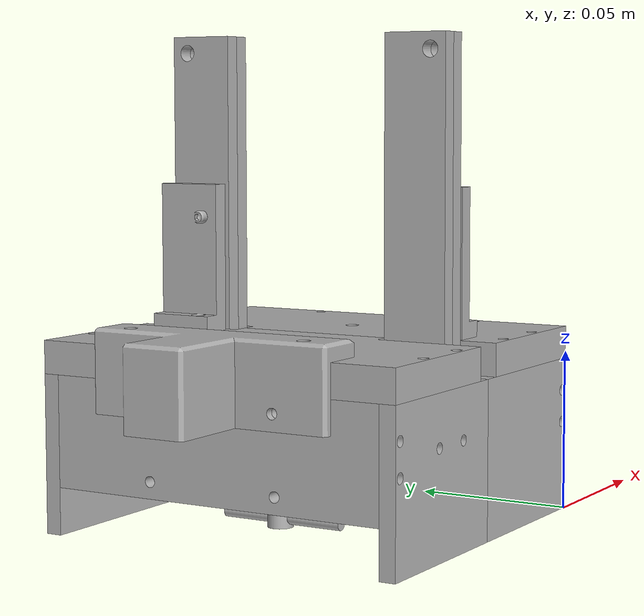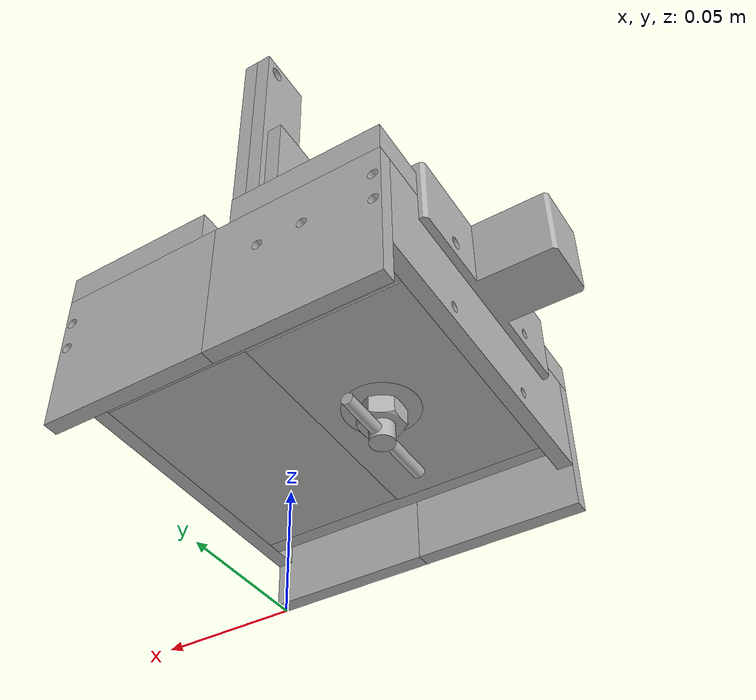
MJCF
<?xml version='1.0' encoding='utf-8'?>
<mujoco model="recovery2">
  <compiler angle="radian" meshdir="meshes" autolimits="true" balanceinertia="true" />
  <option timestep="0.002" integrator="implicitfast" />
  <default>
    <joint damping="0.1" />
    <geom rgba="0.7 0.7 0.7 1" />
  </default>
  <asset>
    <mesh name="Bearing1_1" file="Bearing1_1.stl" scale="0.001 0.001 0.001" />
    <mesh name="Bearing1_1_ss" file="Bearing1_1_ss.obj" scale="0.001 0.001 0.001" />
    <mesh name="Crank_1" file="Crank_1.stl" scale="0.001 0.001 0.001" />
    <mesh name="Crank_1_ss" file="Crank_1_ss.obj" scale="0.001 0.001 0.001" />
    <mesh name="F_Back_1" file="F_Back_1.stl" scale="0.001 0.001 0.001" />
    <mesh name="F_Back_1_ss" file="F_Back_1_ss.obj" scale="0.001 0.001 0.001" />
    <mesh name="F_LeftLink_1" file="F_LeftLink_1.stl" scale="0.001 0.001 0.001" />
    <mesh name="F_LeftLink_1_ss" file="F_LeftLink_1_ss.obj" scale="0.001 0.001 0.001" />
    <mesh name="F_Left_1" file="F_Left_1.stl" scale="0.001 0.001 0.001" />
    <mesh name="F_Left_1_ss" file="F_Left_1_ss.obj" scale="0.001 0.001 0.001" />
    <mesh name="F_RightLink2_1" file="F_RightLink2_1.stl" scale="0.001 0.001 0.001" />
    <mesh name="F_RightLink2_1_ss" file="F_RightLink2_1_ss.obj" scale="0.001 0.001 0.001" />
    <mesh name="F_RightLink_1" file="F_RightLink_1.stl" scale="0.001 0.001 0.001" />
    <mesh name="F_RightLink_1_ss" file="F_RightLink_1_ss.obj" scale="0.001 0.001 0.001" />
    <mesh name="F_Right_1" file="F_Right_1.stl" scale="0.001 0.001 0.001" />
    <mesh name="F_Right_1_ss" file="F_Right_1_ss.obj" scale="0.001 0.001 0.001" />
    <mesh name="F_Top_1" file="F_Top_1.stl" scale="0.001 0.001 0.001" />
    <mesh name="F_Top_1_ss" file="F_Top_1_ss.obj" scale="0.001 0.001 0.001" />
    <mesh name="Handle_1" file="Handle_1.stl" scale="0.001 0.001 0.001" />
    <mesh name="Handle_1_ss" file="Handle_1_ss.obj" scale="0.001 0.001 0.001" />
    <mesh name="HexNut_1" file="HexNut_1.stl" scale="0.001 0.001 0.001" />
    <mesh name="HexNut_1_ss" file="HexNut_1_ss.obj" scale="0.001 0.001 0.001" />
    <mesh name="LeftSlider1_1" file="LeftSlider1_1.stl" scale="0.001 0.001 0.001" />
    <mesh name="LeftSlider1_1_ss" file="LeftSlider1_1_ss.obj" scale="0.001 0.001 0.001" />
    <mesh name="LeftSlider2_1" file="LeftSlider2_1.stl" scale="0.001 0.001 0.001" />
    <mesh name="LeftSlider2_1_ss" file="LeftSlider2_1_ss.obj" scale="0.001 0.001 0.001" />
    <mesh name="M_Back_1" file="M_Back_1.stl" scale="0.001 0.001 0.001" />
    <mesh name="M_Back_1_ss" file="M_Back_1_ss.obj" scale="0.001 0.001 0.001" />
    <mesh name="M_Bottom_1" file="M_Bottom_1.stl" scale="0.001 0.001 0.001" />
    <mesh name="M_Bottom_1_ss" file="M_Bottom_1_ss.obj" scale="0.001 0.001 0.001" />
    <mesh name="M_Left1_1" file="M_Left1_1.stl" scale="0.001 0.001 0.001" />
    <mesh name="M_Left1_1_ss" file="M_Left1_1_ss.obj" scale="0.001 0.001 0.001" />
    <mesh name="M_Left2_1" file="M_Left2_1.stl" scale="0.001 0.001 0.001" />
    <mesh name="M_Left2_1_ss" file="M_Left2_1_ss.obj" scale="0.001 0.001 0.001" />
    <mesh name="M_LeftLink2_copy_1" file="M_LeftLink2_copy_1.stl" scale="0.001 0.001 0.001" />
    <mesh name="M_LeftLink2_copy_1_ss" file="M_LeftLink2_copy_1_ss.obj" scale="0.001 0.001 0.001" />
    <mesh name="M_LeftLink_1" file="M_LeftLink_1.stl" scale="0.001 0.001 0.001" />
    <mesh name="M_LeftLink_1_ss" file="M_LeftLink_1_ss.obj" scale="0.001 0.001 0.001" />
    <mesh name="M_Right1_1" file="M_Right1_1.stl" scale="0.001 0.001 0.001" />
    <mesh name="M_Right1_1_ss" file="M_Right1_1_ss.obj" scale="0.001 0.001 0.001" />
    <mesh name="M_Right2_1" file="M_Right2_1.stl" scale="0.001 0.001 0.001" />
    <mesh name="M_Right2_1_ss" file="M_Right2_1_ss.obj" scale="0.001 0.001 0.001" />
    <mesh name="M_RightLink_1" file="M_RightLink_1.stl" scale="0.001 0.001 0.001" />
    <mesh name="M_RightLink_1_ss" file="M_RightLink_1_ss.obj" scale="0.001 0.001 0.001" />
    <mesh name="M_Top_1" file="M_Top_1.stl" scale="0.001 0.001 0.001" />
    <mesh name="M_Top_1_ss" file="M_Top_1_ss.obj" scale="0.001 0.001 0.001" />
    <mesh name="NeedleBearing_1" file="NeedleBearing_1.stl" scale="0.001 0.001 0.001" />
    <mesh name="NeedleBearing_1_ss" file="NeedleBearing_1_ss.obj" scale="0.001 0.001 0.001" />
    <mesh name="PAWL_1" file="PAWL_1.stl" scale="0.001 0.001 0.001" />
    <mesh name="PAWL_1_ss" file="PAWL_1_ss.obj" scale="0.001 0.001 0.001" />
    <mesh name="PULLEY_1" file="PULLEY_1.stl" scale="0.001 0.001 0.001" />
    <mesh name="PULLEY_1_ss" file="PULLEY_1_ss.obj" scale="0.001 0.001 0.001" />
    <mesh name="RachetGear_1" file="RachetGear_1.stl" scale="0.001 0.001 0.001" />
    <mesh name="RachetGear_1_ss" file="RachetGear_1_ss.obj" scale="0.001 0.001 0.001" />
    <mesh name="RightSlider1_1" file="RightSlider1_1.stl" scale="0.001 0.001 0.001" />
    <mesh name="RightSlider1_1_ss" file="RightSlider1_1_ss.obj" scale="0.001 0.001 0.001" />
    <mesh name="RightSlider2_1" file="RightSlider2_1.stl" scale="0.001 0.001 0.001" />
    <mesh name="RightSlider2_1_ss" file="RightSlider2_1_ss.obj" scale="0.001 0.001 0.001" />
    <mesh name="ShaftHandle_1" file="ShaftHandle_1.stl" scale="0.001 0.001 0.001" />
    <mesh name="ShaftHandle_1_ss" file="ShaftHandle_1_ss.obj" scale="0.001 0.001 0.001" />
    <mesh name="Shaft_copy_1" file="Shaft_copy_1.stl" scale="0.001 0.001 0.001" />
    <mesh name="Shaft_copy_1_ss" file="Shaft_copy_1_ss.obj" scale="0.001 0.001 0.001" />
    <mesh name="Washer_1" file="Washer_1.stl" scale="0.001 0.001 0.001" />
    <mesh name="Washer_1_ss" file="Washer_1_ss.obj" scale="0.001 0.001 0.001" />
    <mesh name="base_link" file="base_link.stl" scale="0.001 0.001 0.001" />
    <mesh name="base_link_ss" file="base_link_ss.obj" scale="0.001 0.001 0.001" />
    </asset>
  <worldbody>
    <light pos="0 0 2" dir="0 0 -1" directional="true" />
    <body name="base_link" pos="0 0 0">
      <inertial pos="-0.0804507486 0.0592835415 0.0194423847" mass="0.297420193" fullinertia="0.000183518828 6.8000971e-05 0.000246582582 -9.206e-09 -1.19847e-07 1.181e-09" />
      <geom name="base_link_vis" type="mesh" mesh="base_link_ss" pos="0 0 0" contype="0" conaffinity="0" group="2" />
      <geom name="base_link_col" type="mesh" mesh="base_link" pos="0 0 0" group="3" />
      <body name="F_Back_1" pos="-0.105148 0.038141 0.01938">
        <inertial pos="-0.00249800208 0.021059684 0.0116702457" mass="0.137767359" fullinertia="0.000144826212 1.331664e-05 0.000132095537 0 -3.612e-09 -6.2e-10" />
        <geom name="F_Back_1_vis" type="mesh" mesh="F_Back_1_ss" pos="0.105148 -0.038141 -0.01938" contype="0" conaffinity="0" group="2" />
        <geom name="F_Back_1_col" type="mesh" mesh="F_Back_1" pos="0.105148 -0.038141 -0.01938" group="3" />
        <body name="F_Left_1" pos="-0.0025 -0.033155 0.01862">
          <inertial pos="0.0251776945 -0.00249996486 -0.014375704" mass="0.101158371" fullinertia="1.9517619e-05 4.5005057e-05 2.5912736e-05 0 -6.7493e-08 0" />
          <geom name="F_Left_1_vis" type="mesh" mesh="F_Left_1_ss" pos="0.107648 -0.004986 -0.038" contype="0" conaffinity="0" group="2" />
          <geom name="F_Left_1_col" type="mesh" mesh="F_Left_1" pos="0.107648 -0.004986 -0.038" group="3" />
          <body name="LeftSlider1_1" pos="0.022542 0 -0.005476">
            <inertial pos="0.0312865344 0.00247888681 -2.14372731e-07" mass="0.00480968577" fullinertia="2.26694e-07 4.009482e-06 3.819257e-06 -3.418e-09 1.5e-11 0" />
            <geom name="LeftSlider1_1_vis" type="mesh" mesh="LeftSlider1_1_ss" pos="0.085106 -0.004986 -0.032524" contype="0" conaffinity="0" group="2" />
            <geom name="LeftSlider1_1_col" type="mesh" mesh="LeftSlider1_1" pos="0.085106 -0.004986 -0.032524" group="3" />
          </body>
        </body>
        <body name="F_Right_1" pos="-0.0025 0.075275 0.01862">
          <inertial pos="0.0251779811 0.0025001046 -0.0143755439" mass="0.101158371" fullinertia="1.9517907e-05 4.5005614e-05 2.5913005e-05 0 -6.7826e-08 0" />
          <geom name="F_Right_1_vis" type="mesh" mesh="F_Right_1_ss" pos="0.107648 -0.113416 -0.038" contype="0" conaffinity="0" group="2" />
          <geom name="F_Right_1_col" type="mesh" mesh="F_Right_1" pos="0.107648 -0.113416 -0.038" group="3" />
          <body name="RightSlider1_1" pos="0.0225 0 -0.0055">
            <inertial pos="0.031507417 -0.002510745 -7.70780898e-05" mass="0.00492918836" fullinertia="2.30839e-07 4.059066e-06 3.865484e-06 5.065e-09 3.24e-09 -1.76e-10" />
            <geom name="RightSlider1_1_vis" type="mesh" mesh="RightSlider1_1_ss" pos="0.085148 -0.113416 -0.0325" contype="0" conaffinity="0" group="2" />
            <geom name="RightSlider1_1_col" type="mesh" mesh="RightSlider1_1" pos="0.085148 -0.113416 -0.0325" group="3" />
          </body>
        </body>
        <body name="F_Top_1" pos="-0.0025 0.050275 0.02862">
          <inertial pos="0.0236003991 -0.0292381857 0.00499821111" mass="0.47829478" fullinertia="0.000537081705 0.000113767795 0.000642836178 1.61796e-07 1.2446e-08 2.7827e-08" />
          <geom name="F_Top_1_vis" type="mesh" mesh="F_Top_1_ss" pos="0.107648 -0.088416 -0.048" contype="0" conaffinity="0" group="2" />
          <geom name="F_Top_1_col" type="mesh" mesh="F_Top_1" pos="0.107648 -0.088416 -0.048" group="3" />
          <body name="F_LeftLink_1" pos="0.047646 -0.071715 0.005">
            <inertial pos="0.00250048472 0.00505978907 0.0458444031" mass="0.0756098278" fullinertia="6.1706429e-05 5.9367238e-05 2.653048e-06 0 0 -1.48998e-07" />
            <geom name="F_LeftLink_1_vis" type="mesh" mesh="F_LeftLink_1_ss" pos="0.060002 -0.016701 -0.053" contype="0" conaffinity="0" group="2" />
            <geom name="F_LeftLink_1_col" type="mesh" mesh="F_LeftLink_1" pos="0.060002 -0.016701 -0.053" group="3" />
          </body>
          <body name="Handle_1" pos="0 0 0.01">
            <inertial pos="-0.00989469782 -0.0292245648 -0.00537091296" mass="0.172379064" fullinertia="5.0854474e-05 2.9520263e-05 6.0410717e-05 1.0205e-08 -5.102506e-06 -1.5992e-08" />
            <geom name="Handle_1_vis" type="mesh" mesh="Handle_1_ss" pos="0.107648 -0.088416 -0.058" contype="0" conaffinity="0" group="2" />
            <geom name="Handle_1_col" type="mesh" mesh="Handle_1" pos="0.107648 -0.088416 -0.058" group="3" />
          </body>
          <body name="F_RightLink_1" pos="0.047646 0.013285 0.005">
            <inertial pos="0.00250048472 -0.00505964911 0.045844402" mass="0.0756098278" fullinertia="6.1706429e-05 5.9367238e-05 2.653048e-06 0 0 1.48998e-07" />
            <geom name="F_RightLink_1_vis" type="mesh" mesh="F_RightLink_1_ss" pos="0.060002 -0.101701 -0.053" contype="0" conaffinity="0" group="2" />
            <geom name="F_RightLink_1_col" type="mesh" mesh="F_RightLink_1" pos="0.060002 -0.101701 -0.053" group="3" />
          </body>
          <body name="F_RightLink2_1" pos="0.038146 0.003285 0.01">
            <inertial pos="0.00455469522 0.00501192716 0.0214802814" mass="0.037859067" fullinertia="8.165114e-06 7.05674e-06 1.43608e-06 1.3539e-08 -3.27374e-07 7.6195e-08" />
            <geom name="F_RightLink2_1_vis" type="mesh" mesh="F_RightLink2_1_ss" pos="0.069502 -0.091701 -0.058" contype="0" conaffinity="0" group="2" />
            <geom name="F_RightLink2_1_col" type="mesh" mesh="F_RightLink2_1" pos="0.069502 -0.091701 -0.058" group="3" />
          </body>
        </body>
      </body>
      <body name="PAWL_1" pos="-0.081083 0.026968 0.02838">
        <inertial pos="0.00759739586 0.0041450729 0.0029997773" mass="0.00219643482" fullinertia="8.7452e-08 1.86954e-07 2.61227e-07 -9.0071e-08 0 0" />
        <geom name="PAWL_1_vis" type="mesh" mesh="PAWL_1_ss" pos="0.081083 -0.026968 -0.02838" contype="0" conaffinity="0" group="2" />
        <geom name="PAWL_1_col" type="mesh" mesh="PAWL_1" pos="0.081083 -0.026968 -0.02838" group="3" />
      </body>
      <body name="M_Bottom_1" pos="-0.160469 0.028926 0.092694">
        <joint name="슬라이더_35" type="slide" pos="0 0 0" axis="1 0 0" />
        <inertial pos="0.165598918 0.0300912211 -0.0726897017" mass="0.315563134" fullinertia="0.000178859145 6.73492e-05 0.000240878302 9.108e-09 6.708e-09 -4.9016e-08" />
        <geom name="M_Bottom_1_vis" type="mesh" mesh="M_Bottom_1_ss" pos="0.160469 -0.028926 -0.092694" contype="0" conaffinity="0" group="2" />
        <geom name="M_Bottom_1_col" type="mesh" mesh="M_Bottom_1" pos="0.160469 -0.028926 -0.092694" group="3" />
        <body name="M_Left2_1" pos="0.170469 -0.011046 -0.072694">
          <inertial pos="-0.0309005488 -0.00249746007 0.0115634885" mass="0.125753991" fullinertia="1.1823586e-05 0.000114734557 0.000103440903 -7.073e-09 -1.05838e-07 3.913e-09" />
          <geom name="M_Left2_1_vis" type="mesh" mesh="M_Left2_1_ss" pos="-0.01 -0.01788 -0.02" contype="0" conaffinity="0" group="2" />
          <geom name="M_Left2_1_col" type="mesh" mesh="M_Left2_1" pos="-0.01 -0.01788 -0.02" group="3" />
          <body name="LeftSlider2_1" pos="9.3e-05 -0.005 0.0125">
            <inertial pos="-0.0298131649 -0.00162593452 -9.23693684e-10" mass="0.00229091972" fullinertia="4.5823e-08 1.932377e-06 1.895545e-06 -1.692e-09 0 0" />
            <geom name="LeftSlider2_1_vis" type="mesh" mesh="LeftSlider2_1_ss" pos="-0.010093 -0.01288 -0.0325" contype="0" conaffinity="0" group="2" />
            <geom name="LeftSlider2_1_col" type="mesh" mesh="LeftSlider2_1" pos="-0.010093 -0.01288 -0.0325" group="3" />
          </body>
        </body>
        <body name="M_Right2_1" pos="0.170653 0.071229 -0.073685">
          <inertial pos="-0.0310865324 0.00249690229 0.0125625477" mass="0.125753991" fullinertia="1.1799136e-05 0.000114701155 0.000103431952 7.136e-09 -1.29329e-07 -4.251e-09" />
          <geom name="M_Right2_1_vis" type="mesh" mesh="M_Right2_1_ss" pos="-0.010184 -0.100155 -0.019009" contype="0" conaffinity="0" group="2" />
          <geom name="M_Right2_1_col" type="mesh" mesh="M_Right2_1" pos="-0.010184 -0.100155 -0.019009" group="3" />
          <body name="RightSlider2_1" pos="-0.001434 0.005 0.013491">
            <inertial pos="-0.0290582882 0.00162540358 9.23657317e-10" mass="0.00228883041" fullinertia="4.5781e-08 1.927194e-06 1.890395e-06 1.689e-09 0 0" />
            <geom name="RightSlider2_1_vis" type="mesh" mesh="RightSlider2_1_ss" pos="-0.00875 -0.105155 -0.0325" contype="0" conaffinity="0" group="2" />
            <geom name="RightSlider2_1_col" type="mesh" mesh="RightSlider2_1" pos="-0.00875 -0.105155 -0.0325" group="3" />
          </body>
        </body>
        <body name="M_Back_1" pos="0.190469 0.008954 -0.072694">
          <inertial pos="0.00250000691 0.0213311524 0.0114116392" mass="0.13564114" fullinertia="0.000142257506 1.2670596e-05 0.000130159704 -3.1e-11 -1e-12 7.852e-09" />
          <geom name="M_Back_1_vis" type="mesh" mesh="M_Back_1_ss" pos="-0.03 -0.03788 -0.02" contype="0" conaffinity="0" group="2" />
          <geom name="M_Back_1_col" type="mesh" mesh="M_Back_1" pos="-0.03 -0.03788 -0.02" group="3" />
          <body name="M_Left1_1" pos="0.0025 -0.03288 0.018">
            <inertial pos="-0.0251347873 -0.0025 -0.0143167501" mass="0.101566519" fullinertia="1.9519705e-05 4.4850547e-05 2.575784e-05 0 9.332e-08 0" />
            <geom name="M_Left1_1_vis" type="mesh" mesh="M_Left1_1_ss" pos="-0.0325 -0.005 -0.038" contype="0" conaffinity="0" group="2" />
            <geom name="M_Left1_1_col" type="mesh" mesh="M_Left1_1" pos="-0.0325 -0.005 -0.038" group="3" />
          </body>
          <body name="M_Right1_1" pos="0.0025 0.07555 0.018">
            <inertial pos="-0.0251347873 0.00250006947 -0.0143167501" mass="0.101566519" fullinertia="1.9519705e-05 4.4850547e-05 2.575784e-05 0 9.332e-08 0" />
            <geom name="M_Right1_1_vis" type="mesh" mesh="M_Right1_1_ss" pos="-0.0325 -0.11343 -0.038" contype="0" conaffinity="0" group="2" />
            <geom name="M_Right1_1_col" type="mesh" mesh="M_Right1_1" pos="-0.0325 -0.11343 -0.038" group="3" />
          </body>
          <body name="M_Top_1" pos="0.0025 -0.007062 0.028">
            <inertial pos="-0.0235136036 0.028419223 0.00499820183" mass="0.475825873" fullinertia="0.00053549831 0.000112782304 0.000640308441 1.85384e-07 -1.325e-08 -2.7827e-08" />
            <geom name="M_Top_1_vis" type="mesh" mesh="M_Top_1_ss" pos="-0.0325 -0.030818 -0.048" contype="0" conaffinity="0" group="2" />
            <geom name="M_Top_1_col" type="mesh" mesh="M_Top_1" pos="-0.0325 -0.030818 -0.048" group="3" />
            <body name="M_LeftLink_1" pos="-0.0475 -0.014103 0.005">
              <inertial pos="-0.0025 0.00505975371 0.045844402" mass="0.0756098278" fullinertia="6.1706429e-05 5.9367238e-05 2.653048e-06 0 0 -1.48998e-07" />
              <geom name="M_LeftLink_1_vis" type="mesh" mesh="M_LeftLink_1_ss" pos="0.015 -0.016715 -0.053" contype="0" conaffinity="0" group="2" />
              <geom name="M_LeftLink_1_col" type="mesh" mesh="M_LeftLink_1" pos="0.015 -0.016715 -0.053" group="3" />
            </body>
            <body name="M_RightLink_1" pos="-0.0475 0.070897 0.005">
              <inertial pos="-0.0025 -0.00505968447 0.0458444031" mass="0.0756098278" fullinertia="6.1706429e-05 5.9367238e-05 2.653048e-06 0 0 1.48998e-07" />
              <geom name="M_RightLink_1_vis" type="mesh" mesh="M_RightLink_1_ss" pos="0.015 -0.101715 -0.053" contype="0" conaffinity="0" group="2" />
              <geom name="M_RightLink_1_col" type="mesh" mesh="M_RightLink_1" pos="0.015 -0.101715 -0.053" group="3" />
            </body>
            <body name="M_LeftLink2_copy_1" pos="-0.039 -0.004103 0.01">
              <inertial pos="-0.00452144349 -0.00501182256 0.0214802814" mass="0.037859067" fullinertia="8.165114e-06 7.056788e-06 1.436128e-06 7.322e-09 3.10602e-07 -7.6195e-08" />
              <geom name="M_LeftLink2_copy_1_vis" type="mesh" mesh="M_LeftLink2_copy_1_ss" pos="0.0065 -0.026715 -0.058" contype="0" conaffinity="0" group="2" />
              <geom name="M_LeftLink2_copy_1_col" type="mesh" mesh="M_LeftLink2_copy_1" pos="0.0065 -0.026715 -0.058" group="3" />
            </body>
          </body>
        </body>
      </body>
      <body name="Shaft_copy_1" pos="-0.074015 0.05922 0.01438">
        <joint name="회전_31" type="hinge" pos="0 0 0" axis="0 0 1" />
        <inertial pos="5.49369363e-07 0.000111595851 0.00887575725" mass="0.0025310231" fullinertia="2.87299e-07 2.88723e-07 2.8585e-08 -9e-12 4e-12 -2.988e-09" />
        <geom name="Shaft_copy_1_vis" type="mesh" mesh="Shaft_copy_1_ss" pos="0.074015 -0.05922 -0.01438" contype="0" conaffinity="0" group="2" />
        <geom name="Shaft_copy_1_col" type="mesh" mesh="Shaft_copy_1" pos="0.074015 -0.05922 -0.01438" group="3" />
        <body name="HexNut_1" pos="0 0 -0.0065">
          <inertial pos="4.84248986e-07 1.18079823e-07 0.0032497773" mass="0.00486569256" fullinertia="9.3372e-08 9.3372e-08 1.52944e-07 0 0 0" />
          <geom name="HexNut_1_vis" type="mesh" mesh="HexNut_1_ss" pos="0.074015 -0.05922 -0.00788" contype="0" conaffinity="0" group="2" />
          <geom name="HexNut_1_col" type="mesh" mesh="HexNut_1" pos="0.074015 -0.05922 -0.00788" group="3" />
        </body>
        <body name="NeedleBearing_1" pos="0 0 0">
          <inertial pos="4.84249041e-07 1.18079821e-07 0.0019997773" mass="0.00145966249" fullinertia="6.3609e-08 6.3609e-08 1.23285e-07 0 0 0" />
          <geom name="NeedleBearing_1_vis" type="mesh" mesh="NeedleBearing_1_ss" pos="0.074015 -0.05922 -0.01438" contype="0" conaffinity="0" group="2" />
          <geom name="NeedleBearing_1_col" type="mesh" mesh="NeedleBearing_1" pos="0.074015 -0.05922 -0.01438" group="3" />
        </body>
        <body name="Bearing1_1" pos="0 0 0.005">
          <inertial pos="4.47566248e-05 -8.42358852e-05 0.0024997773" mass="0.000493863808" fullinertia="1.3177e-08 1.3006e-08 2.3826e-08 1.24e-10 0 0" />
          <geom name="Bearing1_1_vis" type="mesh" mesh="Bearing1_1_ss" pos="0.074015 -0.05922 -0.01938" contype="0" conaffinity="0" group="2" />
          <geom name="Bearing1_1_col" type="mesh" mesh="Bearing1_1" pos="0.074015 -0.05922 -0.01938" group="3" />
        </body>
        <body name="Washer_1" pos="0 0 0.01">
          <inertial pos="4.84249007e-07 1.18079946e-07 0.0014595334" mass="0.011375118" fullinertia="8.11433e-07 8.11433e-07 1.606224e-06 0 0 0" />
          <geom name="Washer_1_vis" type="mesh" mesh="Washer_1_ss" pos="0.074015 -0.05922 -0.02438" contype="0" conaffinity="0" group="2" />
          <geom name="Washer_1_col" type="mesh" mesh="Washer_1" pos="0.074015 -0.05922 -0.02438" group="3" />
        </body>
        <body name="RachetGear_1" pos="0 0 0.014">
          <inertial pos="4.84248869e-07 1.92477561e-05 0.00299966205" mass="0.00668727075" fullinertia="7.01439e-07 7.02139e-07 1.363992e-06 0 0 -5e-12" />
          <geom name="RachetGear_1_vis" type="mesh" mesh="RachetGear_1_ss" pos="0.074015 -0.05922 -0.02838" contype="0" conaffinity="0" group="2" />
          <geom name="RachetGear_1_col" type="mesh" mesh="RachetGear_1" pos="0.074015 -0.05922 -0.02838" group="3" />
        </body>
        <body name="PULLEY_1" pos="0 0 0.0205">
          <inertial pos="4.84264206e-07 1.57785449e-05 0.0029997773" mass="0.0640162025" fullinertia="8.164445e-06 8.169918e-06 1.5959157e-05 0 0 0" />
          <geom name="PULLEY_1_vis" type="mesh" mesh="PULLEY_1_ss" pos="0.074015 -0.05922 -0.03488" contype="0" conaffinity="0" group="2" />
          <geom name="PULLEY_1_col" type="mesh" mesh="PULLEY_1" pos="0.074015 -0.05922 -0.03488" group="3" />
          <body name="Crank_1" pos="-0.0175 0 0.006">
            <joint name="회전_29" type="hinge" pos="0 0 0" axis="0 0 -1" />
            <inertial pos="0.0650004842 1.18079912e-07 0.00298253226" mass="0.0525407762" fullinertia="1.18489e-06 2.6461602e-05 2.7335565e-05 0 1.699e-09 0" />
            <geom name="Crank_1_vis" type="mesh" mesh="Crank_1_ss" pos="0.091515 -0.05922 -0.04088" contype="0" conaffinity="0" group="2" />
            <geom name="Crank_1_col" type="mesh" mesh="Crank_1" pos="0.091515 -0.05922 -0.04088" group="3" />
          </body>
        </body>
        <body name="ShaftHandle_1" pos="0 0.004066 -0.009604">
          <inertial pos="4.84248628e-07 -0.00300044121 -3.99759969e-08" mass="0.00376641907" fullinertia="5.05784e-07 7.19e-09 5.05784e-07 0 0 0" />
          <geom name="ShaftHandle_1_vis" type="mesh" mesh="ShaftHandle_1_ss" pos="0.074015 -0.063286 -0.004776" contype="0" conaffinity="0" group="2" />
          <geom name="ShaftHandle_1_col" type="mesh" mesh="ShaftHandle_1" pos="0.074015 -0.063286 -0.004776" group="3" />
        </body>
      </body>
    </body>
  </worldbody>
  <contact><exclude name="ex_M_Bottom_1_base_link" body1="M_Bottom_1" body2="base_link" /><exclude name="ex_M_Left2_1_base_link" body1="M_Left2_1" body2="base_link" /><exclude name="ex_LeftSlider2_1_base_link" body1="LeftSlider2_1" body2="base_link" /><exclude name="ex_M_Right2_1_base_link" body1="M_Right2_1" body2="base_link" /><exclude name="ex_RightSlider2_1_base_link" body1="RightSlider2_1" body2="base_link" /><exclude name="ex_M_Back_1_base_link" body1="M_Back_1" body2="base_link" /><exclude name="ex_M_Left1_1_base_link" body1="M_Left1_1" body2="base_link" /><exclude name="ex_M_Right1_1_base_link" body1="M_Right1_1" body2="base_link" /><exclude name="ex_M_Top_1_base_link" body1="M_Top_1" body2="base_link" /><exclude name="ex_M_LeftLink_1_base_link" body1="M_LeftLink_1" body2="base_link" /><exclude name="ex_M_RightLink_1_base_link" body1="M_RightLink_1" body2="base_link" /><exclude name="ex_M_LeftLink2_copy_1_base_link" body1="M_LeftLink2_copy_1" body2="base_link" /><exclude name="ex_F_Back_1_M_Bottom_1" body1="F_Back_1" body2="M_Bottom_1" /><exclude name="ex_F_Back_1_M_Left2_1" body1="F_Back_1" body2="M_Left2_1" /><exclude name="ex_F_Back_1_LeftSlider2_1" body1="F_Back_1" body2="LeftSlider2_1" /><exclude name="ex_F_Back_1_M_Right2_1" body1="F_Back_1" body2="M_Right2_1" /><exclude name="ex_F_Back_1_RightSlider2_1" body1="F_Back_1" body2="RightSlider2_1" /><exclude name="ex_F_Back_1_M_Back_1" body1="F_Back_1" body2="M_Back_1" /><exclude name="ex_F_Back_1_M_Left1_1" body1="F_Back_1" body2="M_Left1_1" /><exclude name="ex_F_Back_1_M_Right1_1" body1="F_Back_1" body2="M_Right1_1" /><exclude name="ex_F_Back_1_M_Top_1" body1="F_Back_1" body2="M_Top_1" /><exclude name="ex_F_Back_1_M_LeftLink_1" body1="F_Back_1" body2="M_LeftLink_1" /><exclude name="ex_F_Back_1_M_RightLink_1" body1="F_Back_1" body2="M_RightLink_1" /><exclude name="ex_F_Back_1_M_LeftLink2_copy_1" body1="F_Back_1" body2="M_LeftLink2_copy_1" /><exclude name="ex_F_Left_1_M_Bottom_1" body1="F_Left_1" body2="M_Bottom_1" /><exclude name="ex_F_Left_1_M_Left2_1" body1="F_Left_1" body2="M_Left2_1" /><exclude name="ex_F_Left_1_LeftSlider2_1" body1="F_Left_1" body2="LeftSlider2_1" /><exclude name="ex_F_Left_1_M_Right2_1" body1="F_Left_1" body2="M_Right2_1" /><exclude name="ex_F_Left_1_RightSlider2_1" body1="F_Left_1" body2="RightSlider2_1" /><exclude name="ex_F_Left_1_M_Back_1" body1="F_Left_1" body2="M_Back_1" /><exclude name="ex_F_Left_1_M_Left1_1" body1="F_Left_1" body2="M_Left1_1" /><exclude name="ex_F_Left_1_M_Right1_1" body1="F_Left_1" body2="M_Right1_1" /><exclude name="ex_F_Left_1_M_Top_1" body1="F_Left_1" body2="M_Top_1" /><exclude name="ex_F_Left_1_M_LeftLink_1" body1="F_Left_1" body2="M_LeftLink_1" /><exclude name="ex_F_Left_1_M_RightLink_1" body1="F_Left_1" body2="M_RightLink_1" /><exclude name="ex_F_Left_1_M_LeftLink2_copy_1" body1="F_Left_1" body2="M_LeftLink2_copy_1" /><exclude name="ex_LeftSlider1_1_M_Bottom_1" body1="LeftSlider1_1" body2="M_Bottom_1" /><exclude name="ex_LeftSlider1_1_M_Left2_1" body1="LeftSlider1_1" body2="M_Left2_1" /><exclude name="ex_LeftSlider1_1_LeftSlider2_1" body1="LeftSlider1_1" body2="LeftSlider2_1" /><exclude name="ex_LeftSlider1_1_M_Right2_1" body1="LeftSlider1_1" body2="M_Right2_1" /><exclude name="ex_LeftSlider1_1_RightSlider2_1" body1="LeftSlider1_1" body2="RightSlider2_1" /><exclude name="ex_LeftSlider1_1_M_Back_1" body1="LeftSlider1_1" body2="M_Back_1" /><exclude name="ex_LeftSlider1_1_M_Left1_1" body1="LeftSlider1_1" body2="M_Left1_1" /><exclude name="ex_LeftSlider1_1_M_Right1_1" body1="LeftSlider1_1" body2="M_Right1_1" /><exclude name="ex_LeftSlider1_1_M_Top_1" body1="LeftSlider1_1" body2="M_Top_1" /><exclude name="ex_LeftSlider1_1_M_LeftLink_1" body1="LeftSlider1_1" body2="M_LeftLink_1" /><exclude name="ex_LeftSlider1_1_M_RightLink_1" body1="LeftSlider1_1" body2="M_RightLink_1" /><exclude name="ex_LeftSlider1_1_M_LeftLink2_copy_1" body1="LeftSlider1_1" body2="M_LeftLink2_copy_1" /><exclude name="ex_F_Right_1_M_Bottom_1" body1="F_Right_1" body2="M_Bottom_1" /><exclude name="ex_F_Right_1_M_Left2_1" body1="F_Right_1" body2="M_Left2_1" /><exclude name="ex_F_Right_1_LeftSlider2_1" body1="F_Right_1" body2="LeftSlider2_1" /><exclude name="ex_F_Right_1_M_Right2_1" body1="F_Right_1" body2="M_Right2_1" /><exclude name="ex_F_Right_1_RightSlider2_1" body1="F_Right_1" body2="RightSlider2_1" /><exclude name="ex_F_Right_1_M_Back_1" body1="F_Right_1" body2="M_Back_1" /><exclude name="ex_F_Right_1_M_Left1_1" body1="F_Right_1" body2="M_Left1_1" /><exclude name="ex_F_Right_1_M_Right1_1" body1="F_Right_1" body2="M_Right1_1" /><exclude name="ex_F_Right_1_M_Top_1" body1="F_Right_1" body2="M_Top_1" /><exclude name="ex_F_Right_1_M_LeftLink_1" body1="F_Right_1" body2="M_LeftLink_1" /><exclude name="ex_F_Right_1_M_RightLink_1" body1="F_Right_1" body2="M_RightLink_1" /><exclude name="ex_F_Right_1_M_LeftLink2_copy_1" body1="F_Right_1" body2="M_LeftLink2_copy_1" /><exclude name="ex_M_Bottom_1_RightSlider1_1" body1="M_Bottom_1" body2="RightSlider1_1" /><exclude name="ex_M_Left2_1_RightSlider1_1" body1="M_Left2_1" body2="RightSlider1_1" /><exclude name="ex_LeftSlider2_1_RightSlider1_1" body1="LeftSlider2_1" body2="RightSlider1_1" /><exclude name="ex_M_Right2_1_RightSlider1_1" body1="M_Right2_1" body2="RightSlider1_1" /><exclude name="ex_RightSlider1_1_RightSlider2_1" body1="RightSlider1_1" body2="RightSlider2_1" /><exclude name="ex_M_Back_1_RightSlider1_1" body1="M_Back_1" body2="RightSlider1_1" /><exclude name="ex_M_Left1_1_RightSlider1_1" body1="M_Left1_1" body2="RightSlider1_1" /><exclude name="ex_M_Right1_1_RightSlider1_1" body1="M_Right1_1" body2="RightSlider1_1" /><exclude name="ex_M_Top_1_RightSlider1_1" body1="M_Top_1" body2="RightSlider1_1" /><exclude name="ex_M_LeftLink_1_RightSlider1_1" body1="M_LeftLink_1" body2="RightSlider1_1" /><exclude name="ex_M_RightLink_1_RightSlider1_1" body1="M_RightLink_1" body2="RightSlider1_1" /><exclude name="ex_M_LeftLink2_copy_1_RightSlider1_1" body1="M_LeftLink2_copy_1" body2="RightSlider1_1" /><exclude name="ex_F_Top_1_M_Bottom_1" body1="F_Top_1" body2="M_Bottom_1" /><exclude name="ex_F_Top_1_M_Left2_1" body1="F_Top_1" body2="M_Left2_1" /><exclude name="ex_F_Top_1_LeftSlider2_1" body1="F_Top_1" body2="LeftSlider2_1" /><exclude name="ex_F_Top_1_M_Right2_1" body1="F_Top_1" body2="M_Right2_1" /><exclude name="ex_F_Top_1_RightSlider2_1" body1="F_Top_1" body2="RightSlider2_1" /><exclude name="ex_F_Top_1_M_Back_1" body1="F_Top_1" body2="M_Back_1" /><exclude name="ex_F_Top_1_M_Left1_1" body1="F_Top_1" body2="M_Left1_1" /><exclude name="ex_F_Top_1_M_Right1_1" body1="F_Top_1" body2="M_Right1_1" /><exclude name="ex_F_Top_1_M_Top_1" body1="F_Top_1" body2="M_Top_1" /><exclude name="ex_F_Top_1_M_LeftLink_1" body1="F_Top_1" body2="M_LeftLink_1" /><exclude name="ex_F_Top_1_M_RightLink_1" body1="F_Top_1" body2="M_RightLink_1" /><exclude name="ex_F_Top_1_M_LeftLink2_copy_1" body1="F_Top_1" body2="M_LeftLink2_copy_1" /><exclude name="ex_F_LeftLink_1_M_Bottom_1" body1="F_LeftLink_1" body2="M_Bottom_1" /><exclude name="ex_F_LeftLink_1_M_Left2_1" body1="F_LeftLink_1" body2="M_Left2_1" /><exclude name="ex_F_LeftLink_1_LeftSlider2_1" body1="F_LeftLink_1" body2="LeftSlider2_1" /><exclude name="ex_F_LeftLink_1_M_Right2_1" body1="F_LeftLink_1" body2="M_Right2_1" /><exclude name="ex_F_LeftLink_1_RightSlider2_1" body1="F_LeftLink_1" body2="RightSlider2_1" /><exclude name="ex_F_LeftLink_1_M_Back_1" body1="F_LeftLink_1" body2="M_Back_1" /><exclude name="ex_F_LeftLink_1_M_Left1_1" body1="F_LeftLink_1" body2="M_Left1_1" /><exclude name="ex_F_LeftLink_1_M_Right1_1" body1="F_LeftLink_1" body2="M_Right1_1" /><exclude name="ex_F_LeftLink_1_M_Top_1" body1="F_LeftLink_1" body2="M_Top_1" /><exclude name="ex_F_LeftLink_1_M_LeftLink_1" body1="F_LeftLink_1" body2="M_LeftLink_1" /><exclude name="ex_F_LeftLink_1_M_RightLink_1" body1="F_LeftLink_1" body2="M_RightLink_1" /><exclude name="ex_F_LeftLink_1_M_LeftLink2_copy_1" body1="F_LeftLink_1" body2="M_LeftLink2_copy_1" /><exclude name="ex_Handle_1_M_Bottom_1" body1="Handle_1" body2="M_Bottom_1" /><exclude name="ex_Handle_1_M_Left2_1" body1="Handle_1" body2="M_Left2_1" /><exclude name="ex_Handle_1_LeftSlider2_1" body1="Handle_1" body2="LeftSlider2_1" /><exclude name="ex_Handle_1_M_Right2_1" body1="Handle_1" body2="M_Right2_1" /><exclude name="ex_Handle_1_RightSlider2_1" body1="Handle_1" body2="RightSlider2_1" /><exclude name="ex_Handle_1_M_Back_1" body1="Handle_1" body2="M_Back_1" /><exclude name="ex_Handle_1_M_Left1_1" body1="Handle_1" body2="M_Left1_1" /><exclude name="ex_Handle_1_M_Right1_1" body1="Handle_1" body2="M_Right1_1" /><exclude name="ex_Handle_1_M_Top_1" body1="Handle_1" body2="M_Top_1" /><exclude name="ex_Handle_1_M_LeftLink_1" body1="Handle_1" body2="M_LeftLink_1" /><exclude name="ex_Handle_1_M_RightLink_1" body1="Handle_1" body2="M_RightLink_1" /><exclude name="ex_Handle_1_M_LeftLink2_copy_1" body1="Handle_1" body2="M_LeftLink2_copy_1" /><exclude name="ex_F_RightLink_1_M_Bottom_1" body1="F_RightLink_1" body2="M_Bottom_1" /><exclude name="ex_F_RightLink_1_M_Left2_1" body1="F_RightLink_1" body2="M_Left2_1" /><exclude name="ex_F_RightLink_1_LeftSlider2_1" body1="F_RightLink_1" body2="LeftSlider2_1" /><exclude name="ex_F_RightLink_1_M_Right2_1" body1="F_RightLink_1" body2="M_Right2_1" /><exclude name="ex_F_RightLink_1_RightSlider2_1" body1="F_RightLink_1" body2="RightSlider2_1" /><exclude name="ex_F_RightLink_1_M_Back_1" body1="F_RightLink_1" body2="M_Back_1" /><exclude name="ex_F_RightLink_1_M_Left1_1" body1="F_RightLink_1" body2="M_Left1_1" /><exclude name="ex_F_RightLink_1_M_Right1_1" body1="F_RightLink_1" body2="M_Right1_1" /><exclude name="ex_F_RightLink_1_M_Top_1" body1="F_RightLink_1" body2="M_Top_1" /><exclude name="ex_F_RightLink_1_M_LeftLink_1" body1="F_RightLink_1" body2="M_LeftLink_1" /><exclude name="ex_F_RightLink_1_M_RightLink_1" body1="F_RightLink_1" body2="M_RightLink_1" /><exclude name="ex_F_RightLink_1_M_LeftLink2_copy_1" body1="F_RightLink_1" body2="M_LeftLink2_copy_1" /><exclude name="ex_F_RightLink2_1_M_Bottom_1" body1="F_RightLink2_1" body2="M_Bottom_1" /><exclude name="ex_F_RightLink2_1_M_Left2_1" body1="F_RightLink2_1" body2="M_Left2_1" /><exclude name="ex_F_RightLink2_1_LeftSlider2_1" body1="F_RightLink2_1" body2="LeftSlider2_1" /><exclude name="ex_F_RightLink2_1_M_Right2_1" body1="F_RightLink2_1" body2="M_Right2_1" /><exclude name="ex_F_RightLink2_1_RightSlider2_1" body1="F_RightLink2_1" body2="RightSlider2_1" /><exclude name="ex_F_RightLink2_1_M_Back_1" body1="F_RightLink2_1" body2="M_Back_1" /><exclude name="ex_F_RightLink2_1_M_Left1_1" body1="F_RightLink2_1" body2="M_Left1_1" /><exclude name="ex_F_RightLink2_1_M_Right1_1" body1="F_RightLink2_1" body2="M_Right1_1" /><exclude name="ex_F_RightLink2_1_M_Top_1" body1="F_RightLink2_1" body2="M_Top_1" /><exclude name="ex_F_RightLink2_1_M_LeftLink_1" body1="F_RightLink2_1" body2="M_LeftLink_1" /><exclude name="ex_F_RightLink2_1_M_RightLink_1" body1="F_RightLink2_1" body2="M_RightLink_1" /><exclude name="ex_F_RightLink2_1_M_LeftLink2_copy_1" body1="F_RightLink2_1" body2="M_LeftLink2_copy_1" /><exclude name="ex_M_Bottom_1_PAWL_1" body1="M_Bottom_1" body2="PAWL_1" /><exclude name="ex_M_Left2_1_PAWL_1" body1="M_Left2_1" body2="PAWL_1" /><exclude name="ex_LeftSlider2_1_PAWL_1" body1="LeftSlider2_1" body2="PAWL_1" /><exclude name="ex_M_Right2_1_PAWL_1" body1="M_Right2_1" body2="PAWL_1" /><exclude name="ex_PAWL_1_RightSlider2_1" body1="PAWL_1" body2="RightSlider2_1" /><exclude name="ex_M_Back_1_PAWL_1" body1="M_Back_1" body2="PAWL_1" /><exclude name="ex_M_Left1_1_PAWL_1" body1="M_Left1_1" body2="PAWL_1" /><exclude name="ex_M_Right1_1_PAWL_1" body1="M_Right1_1" body2="PAWL_1" /><exclude name="ex_M_Top_1_PAWL_1" body1="M_Top_1" body2="PAWL_1" /><exclude name="ex_M_LeftLink_1_PAWL_1" body1="M_LeftLink_1" body2="PAWL_1" /><exclude name="ex_M_RightLink_1_PAWL_1" body1="M_RightLink_1" body2="PAWL_1" /><exclude name="ex_M_LeftLink2_copy_1_PAWL_1" body1="M_LeftLink2_copy_1" body2="PAWL_1" /><exclude name="ex_Shaft_copy_1_base_link" body1="Shaft_copy_1" body2="base_link" /><exclude name="ex_HexNut_1_base_link" body1="HexNut_1" body2="base_link" /><exclude name="ex_NeedleBearing_1_base_link" body1="NeedleBearing_1" body2="base_link" /><exclude name="ex_Bearing1_1_base_link" body1="Bearing1_1" body2="base_link" /><exclude name="ex_Washer_1_base_link" body1="Washer_1" body2="base_link" /><exclude name="ex_RachetGear_1_base_link" body1="RachetGear_1" body2="base_link" /><exclude name="ex_PULLEY_1_base_link" body1="PULLEY_1" body2="base_link" /><exclude name="ex_ShaftHandle_1_base_link" body1="ShaftHandle_1" body2="base_link" /><exclude name="ex_F_Back_1_Shaft_copy_1" body1="F_Back_1" body2="Shaft_copy_1" /><exclude name="ex_F_Back_1_HexNut_1" body1="F_Back_1" body2="HexNut_1" /><exclude name="ex_F_Back_1_NeedleBearing_1" body1="F_Back_1" body2="NeedleBearing_1" /><exclude name="ex_Bearing1_1_F_Back_1" body1="Bearing1_1" body2="F_Back_1" /><exclude name="ex_F_Back_1_Washer_1" body1="F_Back_1" body2="Washer_1" /><exclude name="ex_F_Back_1_RachetGear_1" body1="F_Back_1" body2="RachetGear_1" /><exclude name="ex_F_Back_1_PULLEY_1" body1="F_Back_1" body2="PULLEY_1" /><exclude name="ex_F_Back_1_ShaftHandle_1" body1="F_Back_1" body2="ShaftHandle_1" /><exclude name="ex_F_Left_1_Shaft_copy_1" body1="F_Left_1" body2="Shaft_copy_1" /><exclude name="ex_F_Left_1_HexNut_1" body1="F_Left_1" body2="HexNut_1" /><exclude name="ex_F_Left_1_NeedleBearing_1" body1="F_Left_1" body2="NeedleBearing_1" /><exclude name="ex_Bearing1_1_F_Left_1" body1="Bearing1_1" body2="F_Left_1" /><exclude name="ex_F_Left_1_Washer_1" body1="F_Left_1" body2="Washer_1" /><exclude name="ex_F_Left_1_RachetGear_1" body1="F_Left_1" body2="RachetGear_1" /><exclude name="ex_F_Left_1_PULLEY_1" body1="F_Left_1" body2="PULLEY_1" /><exclude name="ex_F_Left_1_ShaftHandle_1" body1="F_Left_1" body2="ShaftHandle_1" /><exclude name="ex_LeftSlider1_1_Shaft_copy_1" body1="LeftSlider1_1" body2="Shaft_copy_1" /><exclude name="ex_HexNut_1_LeftSlider1_1" body1="HexNut_1" body2="LeftSlider1_1" /><exclude name="ex_LeftSlider1_1_NeedleBearing_1" body1="LeftSlider1_1" body2="NeedleBearing_1" /><exclude name="ex_Bearing1_1_LeftSlider1_1" body1="Bearing1_1" body2="LeftSlider1_1" /><exclude name="ex_LeftSlider1_1_Washer_1" body1="LeftSlider1_1" body2="Washer_1" /><exclude name="ex_LeftSlider1_1_RachetGear_1" body1="LeftSlider1_1" body2="RachetGear_1" /><exclude name="ex_LeftSlider1_1_PULLEY_1" body1="LeftSlider1_1" body2="PULLEY_1" /><exclude name="ex_LeftSlider1_1_ShaftHandle_1" body1="LeftSlider1_1" body2="ShaftHandle_1" /><exclude name="ex_F_Right_1_Shaft_copy_1" body1="F_Right_1" body2="Shaft_copy_1" /><exclude name="ex_F_Right_1_HexNut_1" body1="F_Right_1" body2="HexNut_1" /><exclude name="ex_F_Right_1_NeedleBearing_1" body1="F_Right_1" body2="NeedleBearing_1" /><exclude name="ex_Bearing1_1_F_Right_1" body1="Bearing1_1" body2="F_Right_1" /><exclude name="ex_F_Right_1_Washer_1" body1="F_Right_1" body2="Washer_1" /><exclude name="ex_F_Right_1_RachetGear_1" body1="F_Right_1" body2="RachetGear_1" /><exclude name="ex_F_Right_1_PULLEY_1" body1="F_Right_1" body2="PULLEY_1" /><exclude name="ex_F_Right_1_ShaftHandle_1" body1="F_Right_1" body2="ShaftHandle_1" /><exclude name="ex_RightSlider1_1_Shaft_copy_1" body1="RightSlider1_1" body2="Shaft_copy_1" /><exclude name="ex_HexNut_1_RightSlider1_1" body1="HexNut_1" body2="RightSlider1_1" /><exclude name="ex_NeedleBearing_1_RightSlider1_1" body1="NeedleBearing_1" body2="RightSlider1_1" /><exclude name="ex_Bearing1_1_RightSlider1_1" body1="Bearing1_1" body2="RightSlider1_1" /><exclude name="ex_RightSlider1_1_Washer_1" body1="RightSlider1_1" body2="Washer_1" /><exclude name="ex_RachetGear_1_RightSlider1_1" body1="RachetGear_1" body2="RightSlider1_1" /><exclude name="ex_PULLEY_1_RightSlider1_1" body1="PULLEY_1" body2="RightSlider1_1" /><exclude name="ex_RightSlider1_1_ShaftHandle_1" body1="RightSlider1_1" body2="ShaftHandle_1" /><exclude name="ex_F_Top_1_Shaft_copy_1" body1="F_Top_1" body2="Shaft_copy_1" /><exclude name="ex_F_Top_1_HexNut_1" body1="F_Top_1" body2="HexNut_1" /><exclude name="ex_F_Top_1_NeedleBearing_1" body1="F_Top_1" body2="NeedleBearing_1" /><exclude name="ex_Bearing1_1_F_Top_1" body1="Bearing1_1" body2="F_Top_1" /><exclude name="ex_F_Top_1_Washer_1" body1="F_Top_1" body2="Washer_1" /><exclude name="ex_F_Top_1_RachetGear_1" body1="F_Top_1" body2="RachetGear_1" /><exclude name="ex_F_Top_1_PULLEY_1" body1="F_Top_1" body2="PULLEY_1" /><exclude name="ex_F_Top_1_ShaftHandle_1" body1="F_Top_1" body2="ShaftHandle_1" /><exclude name="ex_F_LeftLink_1_Shaft_copy_1" body1="F_LeftLink_1" body2="Shaft_copy_1" /><exclude name="ex_F_LeftLink_1_HexNut_1" body1="F_LeftLink_1" body2="HexNut_1" /><exclude name="ex_F_LeftLink_1_NeedleBearing_1" body1="F_LeftLink_1" body2="NeedleBearing_1" /><exclude name="ex_Bearing1_1_F_LeftLink_1" body1="Bearing1_1" body2="F_LeftLink_1" /><exclude name="ex_F_LeftLink_1_Washer_1" body1="F_LeftLink_1" body2="Washer_1" /><exclude name="ex_F_LeftLink_1_RachetGear_1" body1="F_LeftLink_1" body2="RachetGear_1" /><exclude name="ex_F_LeftLink_1_PULLEY_1" body1="F_LeftLink_1" body2="PULLEY_1" /><exclude name="ex_F_LeftLink_1_ShaftHandle_1" body1="F_LeftLink_1" body2="ShaftHandle_1" /><exclude name="ex_Handle_1_Shaft_copy_1" body1="Handle_1" body2="Shaft_copy_1" /><exclude name="ex_Handle_1_HexNut_1" body1="Handle_1" body2="HexNut_1" /><exclude name="ex_Handle_1_NeedleBearing_1" body1="Handle_1" body2="NeedleBearing_1" /><exclude name="ex_Bearing1_1_Handle_1" body1="Bearing1_1" body2="Handle_1" /><exclude name="ex_Handle_1_Washer_1" body1="Handle_1" body2="Washer_1" /><exclude name="ex_Handle_1_RachetGear_1" body1="Handle_1" body2="RachetGear_1" /><exclude name="ex_Handle_1_PULLEY_1" body1="Handle_1" body2="PULLEY_1" /><exclude name="ex_Handle_1_ShaftHandle_1" body1="Handle_1" body2="ShaftHandle_1" /><exclude name="ex_F_RightLink_1_Shaft_copy_1" body1="F_RightLink_1" body2="Shaft_copy_1" /><exclude name="ex_F_RightLink_1_HexNut_1" body1="F_RightLink_1" body2="HexNut_1" /><exclude name="ex_F_RightLink_1_NeedleBearing_1" body1="F_RightLink_1" body2="NeedleBearing_1" /><exclude name="ex_Bearing1_1_F_RightLink_1" body1="Bearing1_1" body2="F_RightLink_1" /><exclude name="ex_F_RightLink_1_Washer_1" body1="F_RightLink_1" body2="Washer_1" /><exclude name="ex_F_RightLink_1_RachetGear_1" body1="F_RightLink_1" body2="RachetGear_1" /><exclude name="ex_F_RightLink_1_PULLEY_1" body1="F_RightLink_1" body2="PULLEY_1" /><exclude name="ex_F_RightLink_1_ShaftHandle_1" body1="F_RightLink_1" body2="ShaftHandle_1" /><exclude name="ex_F_RightLink2_1_Shaft_copy_1" body1="F_RightLink2_1" body2="Shaft_copy_1" /><exclude name="ex_F_RightLink2_1_HexNut_1" body1="F_RightLink2_1" body2="HexNut_1" /><exclude name="ex_F_RightLink2_1_NeedleBearing_1" body1="F_RightLink2_1" body2="NeedleBearing_1" /><exclude name="ex_Bearing1_1_F_RightLink2_1" body1="Bearing1_1" body2="F_RightLink2_1" /><exclude name="ex_F_RightLink2_1_Washer_1" body1="F_RightLink2_1" body2="Washer_1" /><exclude name="ex_F_RightLink2_1_RachetGear_1" body1="F_RightLink2_1" body2="RachetGear_1" /><exclude name="ex_F_RightLink2_1_PULLEY_1" body1="F_RightLink2_1" body2="PULLEY_1" /><exclude name="ex_F_RightLink2_1_ShaftHandle_1" body1="F_RightLink2_1" body2="ShaftHandle_1" /><exclude name="ex_PAWL_1_Shaft_copy_1" body1="PAWL_1" body2="Shaft_copy_1" /><exclude name="ex_HexNut_1_PAWL_1" body1="HexNut_1" body2="PAWL_1" /><exclude name="ex_NeedleBearing_1_PAWL_1" body1="NeedleBearing_1" body2="PAWL_1" /><exclude name="ex_Bearing1_1_PAWL_1" body1="Bearing1_1" body2="PAWL_1" /><exclude name="ex_PAWL_1_Washer_1" body1="PAWL_1" body2="Washer_1" /><exclude name="ex_PAWL_1_RachetGear_1" body1="PAWL_1" body2="RachetGear_1" /><exclude name="ex_PAWL_1_PULLEY_1" body1="PAWL_1" body2="PULLEY_1" /><exclude name="ex_PAWL_1_ShaftHandle_1" body1="PAWL_1" body2="ShaftHandle_1" /><exclude name="ex_Crank_1_Shaft_copy_1" body1="Crank_1" body2="Shaft_copy_1" /><exclude name="ex_Crank_1_HexNut_1" body1="Crank_1" body2="HexNut_1" /><exclude name="ex_Crank_1_NeedleBearing_1" body1="Crank_1" body2="NeedleBearing_1" /><exclude name="ex_Bearing1_1_Crank_1" body1="Bearing1_1" body2="Crank_1" /><exclude name="ex_Crank_1_Washer_1" body1="Crank_1" body2="Washer_1" /><exclude name="ex_Crank_1_RachetGear_1" body1="Crank_1" body2="RachetGear_1" /><exclude name="ex_Crank_1_PULLEY_1" body1="Crank_1" body2="PULLEY_1" /><exclude name="ex_Crank_1_ShaftHandle_1" body1="Crank_1" body2="ShaftHandle_1" /><exclude name="ex_Crank_1_M_Bottom_1" body1="Crank_1" body2="M_Bottom_1" /><exclude name="ex_Crank_1_M_Left2_1" body1="Crank_1" body2="M_Left2_1" /><exclude name="ex_Crank_1_LeftSlider2_1" body1="Crank_1" body2="LeftSlider2_1" /><exclude name="ex_Crank_1_M_Right2_1" body1="Crank_1" body2="M_Right2_1" /><exclude name="ex_Crank_1_RightSlider2_1" body1="Crank_1" body2="RightSlider2_1" /><exclude name="ex_Crank_1_M_Back_1" body1="Crank_1" body2="M_Back_1" /><exclude name="ex_Crank_1_M_Left1_1" body1="Crank_1" body2="M_Left1_1" /><exclude name="ex_Crank_1_M_Right1_1" body1="Crank_1" body2="M_Right1_1" /><exclude name="ex_Crank_1_M_Top_1" body1="Crank_1" body2="M_Top_1" /><exclude name="ex_Crank_1_M_LeftLink_1" body1="Crank_1" body2="M_LeftLink_1" /><exclude name="ex_Crank_1_M_RightLink_1" body1="Crank_1" body2="M_RightLink_1" /><exclude name="ex_Crank_1_M_LeftLink2_copy_1" body1="Crank_1" body2="M_LeftLink2_copy_1" /></contact><equality>
    <connect name="connect_Crank_1_M_Top_1" body1="Crank_1" body2="M_Top_1" anchor="0.06 0 0.006" />
  </equality>
  <actuator>
    <motor name="회전_31_act" joint="회전_31" />
    </actuator>
</mujoco>
